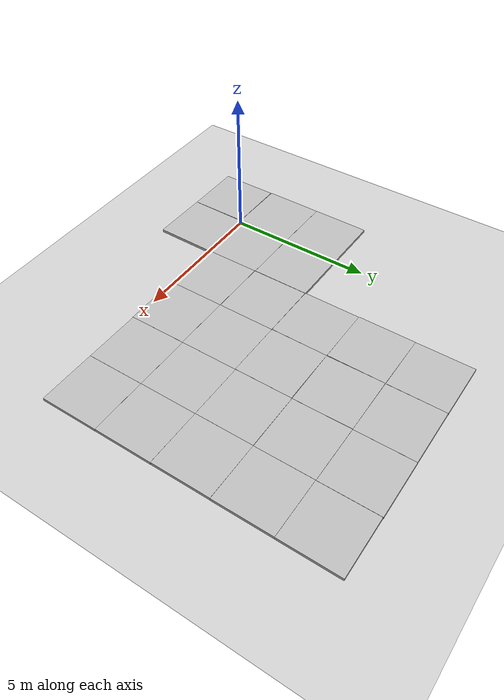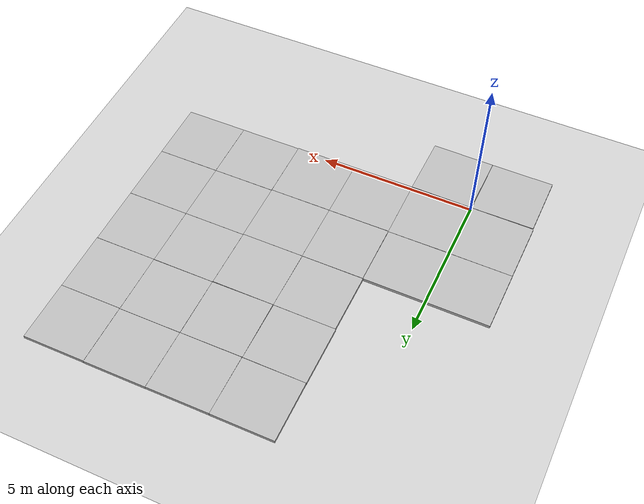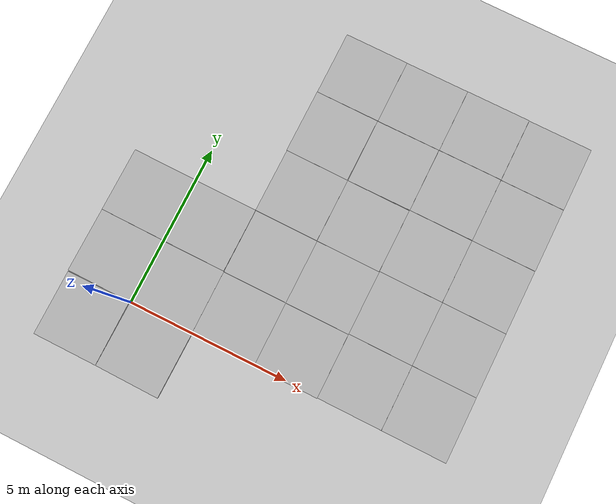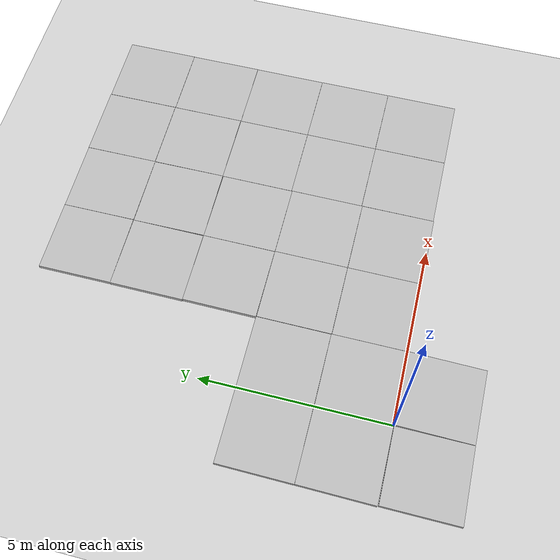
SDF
<sdf version="1.6">
 <world name="default">
  <model name="ground_plane">
   <static>1</static>
   <link name="link">
    <collision name="collision">
     <geometry><plane><normal>0 0 1</normal><size>100 100</size></plane></geometry>
     <surface><friction><ode><mu>100</mu><mu2>50</mu2></ode></friction></surface>
    </collision>
    <visual name="visual">
     <cast_shadows>0</cast_shadows>
     <geometry><plane><normal>0 0 1</normal><size>100 100</size></plane></geometry>
     <material>
      <script><uri>file://media/materials/scripts/gazebo.material</uri><name>Gazebo/Grey</name></script>
     </material>
    </visual>
   </link>
  </model>
  <light name="sun" type="directional">
   <pose>0 0 10 0 -0 0</pose>
   <diffuse>0.8 0.8 0.8 1</diffuse>
   <specular>0.2 0.2 0.2 1</specular>
   <attenuation>
    <range>1000</range>
    <constant>0.9</constant>
    <linear>0.01</linear>
    <quadratic>0.001</quadratic>
   </attenuation>
   <direction>-0.5 0.1 -0.9</direction>
  </light>
  <gravity>0 0 -9.8</gravity>
  <magnetic_field>6e-06 2.3e-05 -4.2e-05</magnetic_field>
  <atmosphere type="adiabatic"/>
  <physics name="default_physics" default="0" type="ode">
   <max_step_size>0.001</max_step_size>
   <real_time_factor>1</real_time_factor>
   <real_time_update_rate>1000</real_time_update_rate>
  </physics>
  <scene><ambient>0.4 0.4 0.4 1</ambient><background>0.7 0.7 0.7 1</background><shadows>1</shadows></scene>
  <audio><device>default</device></audio>
  <spherical_coordinates>
   <surface_model>EARTH_WGS84</surface_model>
   <latitude_deg>0</latitude_deg>
   <longitude_deg>0</longitude_deg>
   <elevation>0</elevation>
   <heading_deg>0</heading_deg>
  </spherical_coordinates>
  <model name="linoleum_plane">
   <static>0</static>
   <link name="link">
    <collision name="collision"><geometry><box><size>2 2 0.1</size></box></geometry></collision>
    <visual name="visual">
     <cast_shadows>0</cast_shadows>
     <geometry><box><size>2 2 0.1</size></box></geometry>
     <material>
      <script>
       <uri>model://linoleum_plane/materials/scripts</uri>
       <uri>model://linoleum_plane/materials/textures</uri>
       <name>linoleum</name>
      </script>
     </material>
    </visual>
    <inertial>
     <inertia><ixx>1</ixx><ixy>0</ixy><ixz>0</ixz><iyy>1</iyy><iyz>0</iyz><izz>1</izz></inertia>
     <mass>1</mass>
    </inertial>
   </link>
   <pose>6.99241 8.99517 0.05 0 -0 0.001969</pose>
  </model>
  <model name="linoleum_plane_0">
   <static>0</static>
   <link name="link">
    <collision name="collision"><geometry><box><size>2 2 0.1</size></box></geometry></collision>
    <visual name="visual">
     <cast_shadows>0</cast_shadows>
     <geometry><box><size>2 2 0.1</size></box></geometry>
     <material>
      <script>
       <uri>model://linoleum_plane/materials/scripts</uri>
       <uri>model://linoleum_plane/materials/textures</uri>
       <name>linoleum</name>
      </script>
     </material>
    </visual>
    <inertial>
     <inertia><ixx>1</ixx><ixy>0</ixy><ixz>0</ixz><iyy>1</iyy><iyz>0</iyz><izz>1</izz></inertia>
     <mass>1</mass>
    </inertial>
   </link>
   <pose>8.99532 8.98934 0.05 0 -0 0.001497</pose>
  </model>
  <model name="linoleum_plane_1">
   <static>0</static>
   <link name="link">
    <collision name="collision"><geometry><box><size>2 2 0.1</size></box></geometry></collision>
    <visual name="visual">
     <cast_shadows>0</cast_shadows>
     <geometry><box><size>2 2 0.1</size></box></geometry>
     <material>
      <script>
       <uri>model://linoleum_plane/materials/scripts</uri>
       <uri>model://linoleum_plane/materials/textures</uri>
       <name>linoleum</name>
      </script>
     </material>
    </visual>
    <inertial>
     <inertia><ixx>1</ixx><ixy>0</ixy><ixz>0</ixz><iyy>1</iyy><iyz>0</iyz><izz>1</izz></inertia>
     <mass>1</mass>
    </inertial>
   </link>
   <pose>4.9912 8.98649 0.05 0 -0 0.002914</pose>
  </model>
  <model name="linoleum_plane_2">
   <static>0</static>
   <link name="link">
    <collision name="collision"><geometry><box><size>2 2 0.1</size></box></geometry></collision>
    <visual name="visual">
     <cast_shadows>0</cast_shadows>
     <geometry><box><size>2 2 0.1</size></box></geometry>
     <material>
      <script>
       <uri>model://linoleum_plane/materials/scripts</uri>
       <uri>model://linoleum_plane/materials/textures</uri>
       <name>linoleum</name>
      </script>
     </material>
    </visual>
    <inertial>
     <inertia><ixx>1</ixx><ixy>0</ixy><ixz>0</ixz><iyy>1</iyy><iyz>0</iyz><izz>1</izz></inertia>
     <mass>1</mass>
    </inertial>
   </link>
   <pose>2.9892 8.98699 0.04996 -2.7e-05 2.2e-05 0.000238</pose>
  </model>
  <model name="linoleum_plane_4">
   <static>0</static>
   <link name="link">
    <collision name="collision"><geometry><box><size>2 2 0.1</size></box></geometry></collision>
    <visual name="visual">
     <cast_shadows>0</cast_shadows>
     <geometry><box><size>2 2 0.1</size></box></geometry>
     <material>
      <script>
       <uri>model://linoleum_plane/materials/scripts</uri>
       <uri>model://linoleum_plane/materials/textures</uri>
       <name>linoleum</name>
      </script>
     </material>
    </visual>
    <inertial>
     <inertia><ixx>1</ixx><ixy>0</ixy><ixz>0</ixz><iyy>1</iyy><iyz>0</iyz><izz>1</izz></inertia>
     <mass>1</mass>
    </inertial>
   </link>
   <pose>8.99446 6.98687 0.05 0 -0 0.001245</pose>
  </model>
  <model name="linoleum_plane_5">
   <static>0</static>
   <link name="link">
    <collision name="collision"><geometry><box><size>2 2 0.1</size></box></geometry></collision>
    <visual name="visual">
     <cast_shadows>0</cast_shadows>
     <geometry><box><size>2 2 0.1</size></box></geometry>
     <material>
      <script>
       <uri>model://linoleum_plane/materials/scripts</uri>
       <uri>model://linoleum_plane/materials/textures</uri>
       <name>linoleum</name>
      </script>
     </material>
    </visual>
    <inertial>
     <inertia><ixx>1</ixx><ixy>0</ixy><ixz>0</ixz><iyy>1</iyy><iyz>0</iyz><izz>1</izz></inertia>
     <mass>1</mass>
    </inertial>
   </link>
   <pose>6.99366 6.99157 0.050042 -5.9e-05 5.9e-05 0.00212</pose>
  </model>
  <model name="linoleum_plane_6">
   <static>0</static>
   <link name="link">
    <collision name="collision"><geometry><box><size>2 2 0.1</size></box></geometry></collision>
    <visual name="visual">
     <cast_shadows>0</cast_shadows>
     <geometry><box><size>2 2 0.1</size></box></geometry>
     <material>
      <script>
       <uri>model://linoleum_plane/materials/scripts</uri>
       <uri>model://linoleum_plane/materials/textures</uri>
       <name>linoleum</name>
      </script>
     </material>
    </visual>
    <inertial>
     <inertia><ixx>1</ixx><ixy>0</ixy><ixz>0</ixz><iyy>1</iyy><iyz>0</iyz><izz>1</izz></inertia>
     <mass>1</mass>
    </inertial>
   </link>
   <pose>4.98999 6.98154 0.05013 6.8e-05 6.2e-05 0.005819</pose>
  </model>
  <model name="linoleum_plane_7">
   <static>0</static>
   <link name="link">
    <collision name="collision"><geometry><box><size>2 2 0.1</size></box></geometry></collision>
    <visual name="visual">
     <cast_shadows>0</cast_shadows>
     <geometry><box><size>2 2 0.1</size></box></geometry>
     <material>
      <script>
       <uri>model://linoleum_plane/materials/scripts</uri>
       <uri>model://linoleum_plane/materials/textures</uri>
       <name>linoleum</name>
      </script>
     </material>
    </visual>
    <inertial>
     <inertia><ixx>1</ixx><ixy>0</ixy><ixz>0</ixz><iyy>1</iyy><iyz>0</iyz><izz>1</izz></inertia>
     <mass>1</mass>
    </inertial>
   </link>
   <pose>2.98032 6.98306 0.050065 -0.0001 2.2e-05 -0.004167</pose>
  </model>
  <model name="linoleum_plane_10">
   <static>0</static>
   <link name="link">
    <collision name="collision"><geometry><box><size>2 2 0.1</size></box></geometry></collision>
    <visual name="visual">
     <cast_shadows>0</cast_shadows>
     <geometry><box><size>2 2 0.1</size></box></geometry>
     <material>
      <script>
       <uri>model://linoleum_plane/materials/scripts</uri>
       <uri>model://linoleum_plane/materials/textures</uri>
       <name>linoleum</name>
      </script>
     </material>
    </visual>
    <inertial>
     <inertia><ixx>1</ixx><ixy>0</ixy><ixz>0</ixz><iyy>1</iyy><iyz>0</iyz><izz>1</izz></inertia>
     <mass>1</mass>
    </inertial>
   </link>
   <pose>-1.02062 3.00721 0.05 0 0 -0.007942</pose>
  </model>
  <model name="linoleum_plane_11">
   <static>0</static>
   <link name="link">
    <collision name="collision"><geometry><box><size>2 2 0.1</size></box></geometry></collision>
    <visual name="visual">
     <cast_shadows>0</cast_shadows>
     <geometry><box><size>2 2 0.1</size></box></geometry>
     <material>
      <script>
       <uri>model://linoleum_plane/materials/scripts</uri>
       <uri>model://linoleum_plane/materials/textures</uri>
       <name>linoleum</name>
      </script>
     </material>
    </visual>
    <inertial>
     <inertia><ixx>1</ixx><ixy>0</ixy><ixz>0</ixz><iyy>1</iyy><iyz>0</iyz><izz>1</izz></inertia>
     <mass>1</mass>
    </inertial>
   </link>
   <pose>2.98557 4.98209 0.050225 -0.00031 0.000274 -0.00544</pose>
  </model>
  <model name="linoleum_plane_12">
   <static>0</static>
   <link name="link">
    <collision name="collision"><geometry><box><size>2 2 0.1</size></box></geometry></collision>
    <visual name="visual">
     <cast_shadows>0</cast_shadows>
     <geometry><box><size>2 2 0.1</size></box></geometry>
     <material>
      <script>
       <uri>model://linoleum_plane/materials/scripts</uri>
       <uri>model://linoleum_plane/materials/textures</uri>
       <name>linoleum</name>
      </script>
     </material>
    </visual>
    <inertial>
     <inertia><ixx>1</ixx><ixy>0</ixy><ixz>0</ixz><iyy>1</iyy><iyz>0</iyz><izz>1</izz></inertia>
     <mass>1</mass>
    </inertial>
   </link>
   <pose>4.9874 4.97161 0.05034 4e-05 0.000153 -0.002899</pose>
  </model>
  <model name="linoleum_plane_13">
   <static>0</static>
   <link name="link">
    <collision name="collision"><geometry><box><size>2 2 0.1</size></box></geometry></collision>
    <visual name="visual">
     <cast_shadows>0</cast_shadows>
     <geometry><box><size>2 2 0.1</size></box></geometry>
     <material>
      <script>
       <uri>model://linoleum_plane/materials/scripts</uri>
       <uri>model://linoleum_plane/materials/textures</uri>
       <name>linoleum</name>
      </script>
     </material>
    </visual>
    <inertial>
     <inertia><ixx>1</ixx><ixy>0</ixy><ixz>0</ixz><iyy>1</iyy><iyz>0</iyz><izz>1</izz></inertia>
     <mass>1</mass>
    </inertial>
   </link>
   <pose>6.9887 4.98551 0.049993 6.9e-05 9.1e-05 -0.001835</pose>
  </model>
  <model name="linoleum_plane_14">
   <static>0</static>
   <link name="link">
    <collision name="collision"><geometry><box><size>2 2 0.1</size></box></geometry></collision>
    <visual name="visual">
     <cast_shadows>0</cast_shadows>
     <geometry><box><size>2 2 0.1</size></box></geometry>
     <material>
      <script>
       <uri>model://linoleum_plane/materials/scripts</uri>
       <uri>model://linoleum_plane/materials/textures</uri>
       <name>linoleum</name>
      </script>
     </material>
    </visual>
    <inertial>
     <inertia><ixx>1</ixx><ixy>0</ixy><ixz>0</ixz><iyy>1</iyy><iyz>0</iyz><izz>1</izz></inertia>
     <mass>1</mass>
    </inertial>
   </link>
   <pose>8.9892 4.98463 0.05 0 0 -0.000997</pose>
  </model>
  <model name="linoleum_plane_3">
   <static>0</static>
   <link name="link">
    <collision name="collision"><geometry><box><size>2 2 0.1</size></box></geometry></collision>
    <visual name="visual">
     <cast_shadows>0</cast_shadows>
     <geometry><box><size>2 2 0.1</size></box></geometry>
     <material>
      <script>
       <uri>model://linoleum_plane/materials/scripts</uri>
       <uri>model://linoleum_plane/materials/textures</uri>
       <name>linoleum</name>
      </script>
     </material>
    </visual>
    <inertial>
     <inertia><ixx>1</ixx><ixy>0</ixy><ixz>0</ixz><iyy>1</iyy><iyz>0</iyz><izz>1</izz></inertia>
     <mass>1</mass>
    </inertial>
   </link>
   <pose>8.99037 2.9836 0.05 0 -0 -0.002022</pose>
  </model>
  <model name="linoleum_plane_15">
   <static>0</static>
   <link name="link">
    <collision name="collision"><geometry><box><size>2 2 0.1</size></box></geometry></collision>
    <visual name="visual">
     <cast_shadows>0</cast_shadows>
     <geometry><box><size>2 2 0.1</size></box></geometry>
     <material>
      <script>
       <uri>model://linoleum_plane/materials/scripts</uri>
       <uri>model://linoleum_plane/materials/textures</uri>
       <name>linoleum</name>
      </script>
     </material>
    </visual>
    <inertial>
     <inertia><ixx>1</ixx><ixy>0</ixy><ixz>0</ixz><iyy>1</iyy><iyz>0</iyz><izz>1</izz></inertia>
     <mass>1</mass>
    </inertial>
   </link>
   <pose>6.99127 2.98499 0.050089 0.000103 0.000154 -0.002188</pose>
  </model>
  <model name="linoleum_plane_16">
   <static>0</static>
   <link name="link">
    <collision name="collision"><geometry><box><size>2 2 0.1</size></box></geometry></collision>
    <visual name="visual">
     <cast_shadows>0</cast_shadows>
     <geometry><box><size>2 2 0.1</size></box></geometry>
     <material>
      <script>
       <uri>model://linoleum_plane/materials/scripts</uri>
       <uri>model://linoleum_plane/materials/textures</uri>
       <name>linoleum</name>
      </script>
     </material>
    </visual>
    <inertial>
     <inertia><ixx>1</ixx><ixy>0</ixy><ixz>0</ixz><iyy>1</iyy><iyz>0</iyz><izz>1</izz></inertia>
     <mass>1</mass>
    </inertial>
   </link>
   <pose>4.99123 2.97086 0.050598 -0.00043 0.000168 -0.002188</pose>
  </model>
  <model name="linoleum_plane_17">
   <static>0</static>
   <link name="link">
    <collision name="collision"><geometry><box><size>2 2 0.1</size></box></geometry></collision>
    <visual name="visual">
     <cast_shadows>0</cast_shadows>
     <geometry><box><size>2 2 0.1</size></box></geometry>
     <material>
      <script>
       <uri>model://linoleum_plane/materials/scripts</uri>
       <uri>model://linoleum_plane/materials/textures</uri>
       <name>linoleum</name>
      </script>
     </material>
    </visual>
    <inertial>
     <inertia><ixx>1</ixx><ixy>0</ixy><ixz>0</ixz><iyy>1</iyy><iyz>0</iyz><izz>1</izz></inertia>
     <mass>1</mass>
    </inertial>
   </link>
   <pose>2.99115 2.97583 0.05 0 0 -0.002111</pose>
  </model>
  <model name="linoleum_plane_18">
   <static>0</static>
   <link name="link">
    <collision name="collision"><geometry><box><size>2 2 0.1</size></box></geometry></collision>
    <visual name="visual">
     <cast_shadows>0</cast_shadows>
     <geometry><box><size>2 2 0.1</size></box></geometry>
     <material>
      <script>
       <uri>model://linoleum_plane/materials/scripts</uri>
       <uri>model://linoleum_plane/materials/textures</uri>
       <name>linoleum</name>
      </script>
     </material>
    </visual>
    <inertial>
     <inertia><ixx>1</ixx><ixy>0</ixy><ixz>0</ixz><iyy>1</iyy><iyz>0</iyz><izz>1</izz></inertia>
     <mass>1</mass>
    </inertial>
   </link>
   <pose>0.982685 2.99208 0.04999 -4e-06 2e-06 -0.004578</pose>
  </model>
  <model name="linoleum_plane_19">
   <static>0</static>
   <link name="link">
    <collision name="collision"><geometry><box><size>2 2 0.1</size></box></geometry></collision>
    <visual name="visual">
     <cast_shadows>0</cast_shadows>
     <geometry><box><size>2 2 0.1</size></box></geometry>
     <material>
      <script>
       <uri>model://linoleum_plane/materials/scripts</uri>
       <uri>model://linoleum_plane/materials/textures</uri>
       <name>linoleum</name>
      </script>
     </material>
    </visual>
    <inertial>
     <inertia><ixx>1</ixx><ixy>0</ixy><ixz>0</ixz><iyy>1</iyy><iyz>0</iyz><izz>1</izz></inertia>
     <mass>1</mass>
    </inertial>
   </link>
   <pose>8.99178 0.981595 0.05 0 0 -1.4e-05</pose>
  </model>
  <model name="linoleum_plane_20">
   <static>0</static>
   <link name="link">
    <collision name="collision"><geometry><box><size>2 2 0.1</size></box></geometry></collision>
    <visual name="visual">
     <cast_shadows>0</cast_shadows>
     <geometry><box><size>2 2 0.1</size></box></geometry>
     <material>
      <script>
       <uri>model://linoleum_plane/materials/scripts</uri>
       <uri>model://linoleum_plane/materials/textures</uri>
       <name>linoleum</name>
      </script>
     </material>
    </visual>
    <inertial>
     <inertia><ixx>1</ixx><ixy>0</ixy><ixz>0</ixz><iyy>1</iyy><iyz>0</iyz><izz>1</izz></inertia>
     <mass>1</mass>
    </inertial>
   </link>
   <pose>6.99082 0.983234 0.05 0 0 -0.000481</pose>
  </model>
  <model name="linoleum_plane_21">
   <static>0</static>
   <link name="link">
    <collision name="collision"><geometry><box><size>2 2 0.1</size></box></geometry></collision>
    <visual name="visual">
     <cast_shadows>0</cast_shadows>
     <geometry><box><size>2 2 0.1</size></box></geometry>
     <material>
      <script>
       <uri>model://linoleum_plane/materials/scripts</uri>
       <uri>model://linoleum_plane/materials/textures</uri>
       <name>linoleum</name>
      </script>
     </material>
    </visual>
    <inertial>
     <inertia><ixx>1</ixx><ixy>0</ixy><ixz>0</ixz><iyy>1</iyy><iyz>0</iyz><izz>1</izz></inertia>
     <mass>1</mass>
    </inertial>
   </link>
   <pose>4.9899 0.967706 0.05003 4.8e-05 5.5e-05 0.000529</pose>
  </model>
  <model name="linoleum_plane_22">
   <static>0</static>
   <link name="link">
    <collision name="collision"><geometry><box><size>2 2 0.1</size></box></geometry></collision>
    <visual name="visual">
     <cast_shadows>0</cast_shadows>
     <geometry><box><size>2 2 0.1</size></box></geometry>
     <material>
      <script>
       <uri>model://linoleum_plane/materials/scripts</uri>
       <uri>model://linoleum_plane/materials/textures</uri>
       <name>linoleum</name>
      </script>
     </material>
    </visual>
    <inertial>
     <inertia><ixx>1</ixx><ixy>0</ixy><ixz>0</ixz><iyy>1</iyy><iyz>0</iyz><izz>1</izz></inertia>
     <mass>1</mass>
    </inertial>
   </link>
   <pose>2.98987 0.970351 0.049995 0 -5e-06 0.000502</pose>
  </model>
  <model name="linoleum_plane_23">
   <static>0</static>
   <link name="link">
    <collision name="collision"><geometry><box><size>2 2 0.1</size></box></geometry></collision>
    <visual name="visual">
     <cast_shadows>0</cast_shadows>
     <geometry><box><size>2 2 0.1</size></box></geometry>
     <material>
      <script>
       <uri>model://linoleum_plane/materials/scripts</uri>
       <uri>model://linoleum_plane/materials/textures</uri>
       <name>linoleum</name>
      </script>
     </material>
    </visual>
    <inertial>
     <inertia><ixx>1</ixx><ixy>0</ixy><ixz>0</ixz><iyy>1</iyy><iyz>0</iyz><izz>1</izz></inertia>
     <mass>1</mass>
    </inertial>
   </link>
   <pose>0.989464 0.98727 0.050127 8.1e-05 -5.1e-05 0.000427</pose>
  </model>
  <model name="linoleum_plane_24">
   <static>0</static>
   <link name="link">
    <collision name="collision"><geometry><box><size>2 2 0.1</size></box></geometry></collision>
    <visual name="visual">
     <cast_shadows>0</cast_shadows>
     <geometry><box><size>2 2 0.1</size></box></geometry>
     <material>
      <script>
       <uri>model://linoleum_plane/materials/scripts</uri>
       <uri>model://linoleum_plane/materials/textures</uri>
       <name>linoleum</name>
      </script>
     </material>
    </visual>
    <inertial>
     <inertia><ixx>1</ixx><ixy>0</ixy><ixz>0</ixz><iyy>1</iyy><iyz>0</iyz><izz>1</izz></inertia>
     <mass>1</mass>
    </inertial>
   </link>
   <pose>0.986846 -1.02531 0.05 -2.1e-05 -2.1e-05 -0.011566</pose>
  </model>
  <model name="linoleum_plane_25">
   <static>0</static>
   <link name="link">
    <collision name="collision"><geometry><box><size>2 2 0.1</size></box></geometry></collision>
    <visual name="visual">
     <cast_shadows>0</cast_shadows>
     <geometry><box><size>2 2 0.1</size></box></geometry>
     <material>
      <script>
       <uri>model://linoleum_plane/materials/scripts</uri>
       <uri>model://linoleum_plane/materials/textures</uri>
       <name>linoleum</name>
      </script>
     </material>
    </visual>
    <inertial>
     <inertia><ixx>1</ixx><ixy>0</ixy><ixz>0</ixz><iyy>1</iyy><iyz>0</iyz><izz>1</izz></inertia>
     <mass>1</mass>
    </inertial>
   </link>
   <pose>-1.02943 -1.01155 0.048604 -0.00104 0.001073 -0.0019</pose>
  </model>
  <model name="linoleum_plane_26">
   <static>0</static>
   <link name="link">
    <collision name="collision"><geometry><box><size>2 2 0.1</size></box></geometry></collision>
    <visual name="visual">
     <cast_shadows>0</cast_shadows>
     <geometry><box><size>2 2 0.1</size></box></geometry>
     <material>
      <script>
       <uri>model://linoleum_plane/materials/scripts</uri>
       <uri>model://linoleum_plane/materials/textures</uri>
       <name>linoleum</name>
      </script>
     </material>
    </visual>
    <inertial>
     <inertia><ixx>1</ixx><ixy>0</ixy><ixz>0</ixz><iyy>1</iyy><iyz>0</iyz><izz>1</izz></inertia>
     <mass>1</mass>
    </inertial>
   </link>
   <pose>-1.03515 1.00546 0.050001 -2e-06 -1e-06 -0.009742</pose>
  </model>
 </world>
</sdf>
